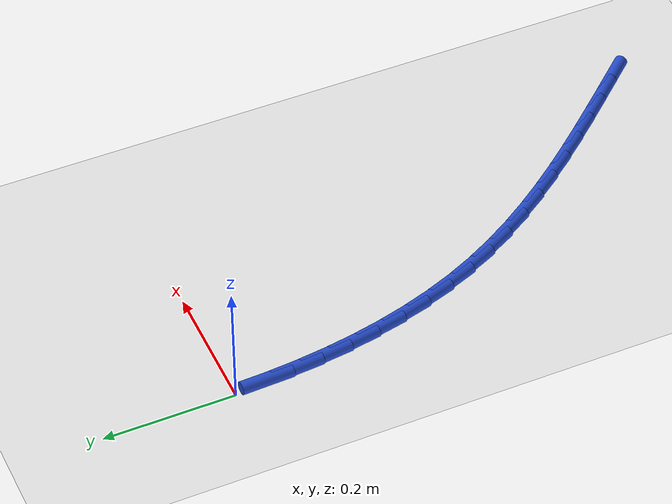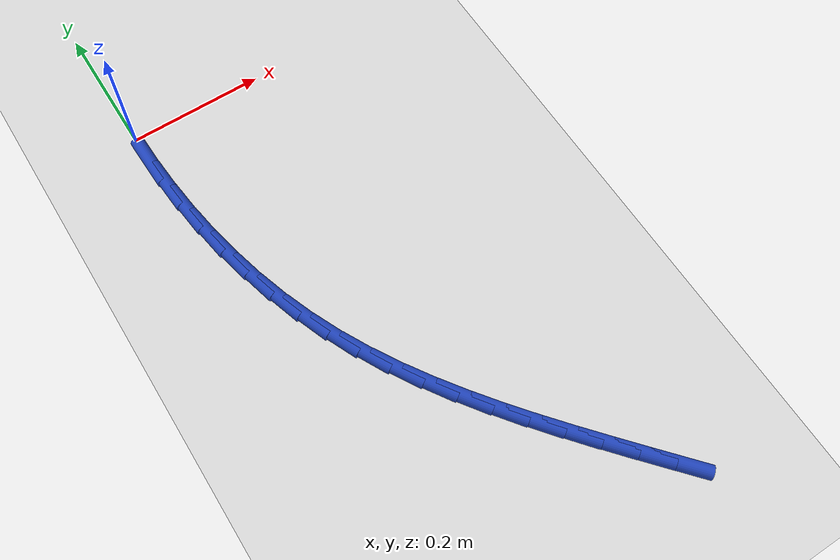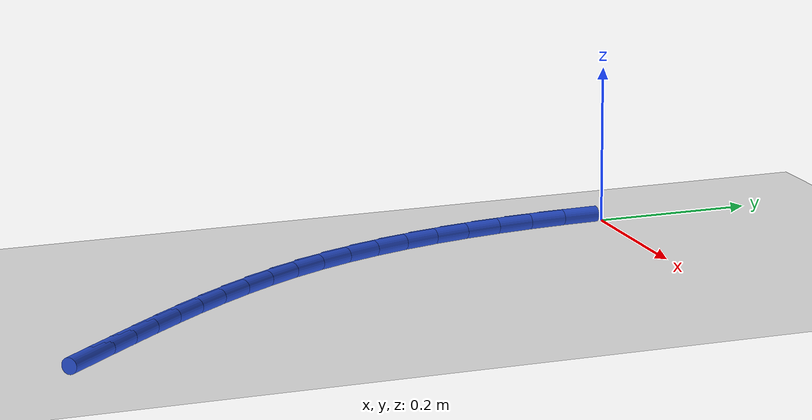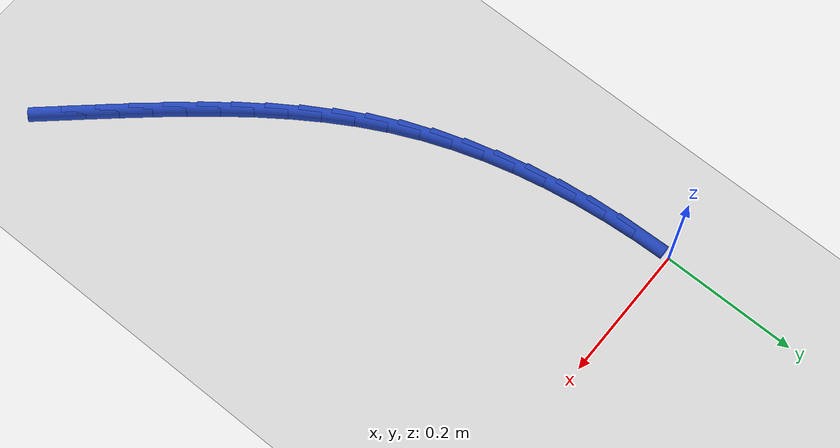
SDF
<sdf version="1.6">
 <world name="default">
  <model name="ground_plane">
   <static>1</static>
   <link name="link">
    <collision name="collision">
     <geometry><plane><normal>0 0 1</normal><size>100 100</size></plane></geometry>
     <surface><friction><ode><mu>100</mu><mu2>50</mu2></ode></friction></surface>
    </collision>
    <visual name="visual">
     <cast_shadows>0</cast_shadows>
     <geometry><plane><normal>0 0 1</normal><size>100 100</size></plane></geometry>
     <material>
      <script><uri>file://media/materials/scripts/gazebo.material</uri><name>Gazebo/WhiteGlow</name></script>
     </material>
    </visual>
   </link>
  </model>
  <model name="line">
   <link name="link_131">
    <pose>0.366102742569241 -0.7827191253254164 0.01 0 1.57 -0.8429794388517418</pose>
    <collision name="collision">
     <geometry><cylinder><radius>0.01</radius><length>0.08</length></cylinder></geometry>
    </collision>
    <visual name="visual">
     <material>
      <script><name>Gazebo/Blue</name><uri>file://media/materials/scripts/gazebo.material</uri></script>
     </material>
     <geometry><cylinder><radius>0.01</radius><length>0.08</length></cylinder></geometry>
    </visual>
   </link>
   <link name="link_132">
    <pose>0.33542247842937917 -0.7482853632168999 0.01 0 1.57 -0.8480424731936691</pose>
    <collision name="collision">
     <geometry><cylinder><radius>0.01</radius><length>0.08</length></cylinder></geometry>
    </collision>
    <visual name="visual">
     <material>
      <script><name>Gazebo/Blue</name><uri>file://media/materials/scripts/gazebo.material</uri></script>
     </material>
     <geometry><cylinder><radius>0.01</radius><length>0.08</length></cylinder></geometry>
    </visual>
   </link>
   <link name="link_133">
    <pose>0.30466275017295413 -0.7134084881879716 0.01 0 1.57 -0.8566312202091887</pose>
    <collision name="collision">
     <geometry><cylinder><radius>0.01</radius><length>0.08</length></cylinder></geometry>
    </collision>
    <visual name="visual">
     <material>
      <script><name>Gazebo/Blue</name><uri>file://media/materials/scripts/gazebo.material</uri></script>
     </material>
     <geometry><cylinder><radius>0.01</radius><length>0.08</length></cylinder></geometry>
    </visual>
   </link>
   <link name="link_134">
    <pose>0.27400243652153217 -0.6780365214501081 0.01 0 1.57 -0.8711834710990899</pose>
    <collision name="collision">
     <geometry><cylinder><radius>0.01</radius><length>0.08</length></cylinder></geometry>
    </collision>
    <visual name="visual">
     <material>
      <script><name>Gazebo/Blue</name><uri>file://media/materials/scripts/gazebo.material</uri></script>
     </material>
     <geometry><cylinder><radius>0.01</radius><length>0.08</length></cylinder></geometry>
    </visual>
   </link>
   <link name="link_135">
    <pose>0.24374821481249911 -0.6420892084835649 0.01 0 1.57 -0.8917590503247574</pose>
    <collision name="collision">
     <geometry><cylinder><radius>0.01</radius><length>0.08</length></cylinder></geometry>
    </collision>
    <visual name="visual">
     <material>
      <script><name>Gazebo/Blue</name><uri>file://media/materials/scripts/gazebo.material</uri></script>
     </material>
     <geometry><cylinder><radius>0.01</radius><length>0.08</length></cylinder></geometry>
    </visual>
   </link>
   <link name="link_136">
    <pose>0.21420703956160206 -0.6054862334422605 0.01 0 1.57 -0.9184931122881407</pose>
    <collision name="collision">
     <geometry><cylinder><radius>0.01</radius><length>0.08</length></cylinder></geometry>
    </collision>
    <visual name="visual">
     <material>
      <script><name>Gazebo/Blue</name><uri>file://media/materials/scripts/gazebo.material</uri></script>
     </material>
     <geometry><cylinder><radius>0.01</radius><length>0.08</length></cylinder></geometry>
    </visual>
   </link>
   <link name="link_137">
    <pose>0.18568586528458966 -0.5681472804801139 0.01 0 1.57 -0.9515806924419745</pose>
    <collision name="collision">
     <geometry><cylinder><radius>0.01</radius><length>0.08</length></cylinder></geometry>
    </collision>
    <visual name="visual">
     <material>
      <script><name>Gazebo/Blue</name><uri>file://media/materials/scripts/gazebo.material</uri></script>
     </material>
     <geometry><cylinder><radius>0.01</radius><length>0.08</length></cylinder></geometry>
    </visual>
   </link>
   <link name="link_138">
    <pose>0.15849164649721056 -0.5299920337510451 0.01 0 1.57 -0.9912485882185016</pose>
    <collision name="collision">
     <geometry><cylinder><radius>0.01</radius><length>0.08</length></cylinder></geometry>
    </collision>
    <visual name="visual">
     <material>
      <script><name>Gazebo/Blue</name><uri>file://media/materials/scripts/gazebo.material</uri></script>
     </material>
     <geometry><cylinder><radius>0.01</radius><length>0.08</length></cylinder></geometry>
    </visual>
   </link>
   <link name="link_139">
    <pose>0.13293133771521212 -0.4909401774089723 0.01 0 1.57 -1.0377165753269992</pose>
    <collision name="collision">
     <geometry><cylinder><radius>0.01</radius><length>0.08</length></cylinder></geometry>
    </collision>
    <visual name="visual">
     <material>
      <script><name>Gazebo/Blue</name><uri>file://media/materials/scripts/gazebo.material</uri></script>
     </material>
     <geometry><cylinder><radius>0.01</radius><length>0.08</length></cylinder></geometry>
    </visual>
   </link>
   <link name="link_140">
    <pose>0.10931189345434324 -0.4509113956078153 0.01 0 1.57 -1.0911449791452317</pose>
    <collision name="collision">
     <geometry><cylinder><radius>0.01</radius><length>0.08</length></cylinder></geometry>
    </collision>
    <visual name="visual">
     <material>
      <script><name>Gazebo/Blue</name><uri>file://media/materials/scripts/gazebo.material</uri></script>
     </material>
     <geometry><cylinder><radius>0.01</radius><length>0.08</length></cylinder></geometry>
    </visual>
   </link>
   <link name="link_141">
    <pose>0.0879402682303514 -0.40982537250149204 0.01 0 1.57 -1.1503179667245942</pose>
    <collision name="collision">
     <geometry><cylinder><radius>0.01</radius><length>0.08</length></cylinder></geometry>
    </collision>
    <visual name="visual">
     <material>
      <script><name>Gazebo/Blue</name><uri>file://media/materials/scripts/gazebo.material</uri></script>
     </material>
     <geometry><cylinder><radius>0.01</radius><length>0.08</length></cylinder></geometry>
    </visual>
   </link>
   <link name="link_142">
    <pose>0.06907051487336853 -0.3676249830524414 0.01 0 1.57 -1.2088408886434057</pose>
    <collision name="collision">
     <geometry><cylinder><radius>0.01</radius><length>0.08</length></cylinder></geometry>
    </collision>
    <visual name="visual">
     <material>
      <script><name>Gazebo/Blue</name><uri>file://media/materials/scripts/gazebo.material</uri></script>
     </material>
     <geometry><cylinder><radius>0.01</radius><length>0.08</length></cylinder></geometry>
    </visual>
   </link>
   <link name="link_143">
    <pose>0.05269221511523673 -0.32436903990122756 0.01 0 1.57 -1.264575523895898</pose>
    <collision name="collision">
     <geometry><cylinder><radius>0.01</radius><length>0.08</length></cylinder></geometry>
    </collision>
    <visual name="visual">
     <material>
      <script><name>Gazebo/Blue</name><uri>file://media/materials/scripts/gazebo.material</uri></script>
     </material>
     <geometry><cylinder><radius>0.01</radius><length>0.08</length></cylinder></geometry>
    </visual>
   </link>
   <link name="link_144">
    <pose>0.038712472538065215 -0.28015251209732733 0.01 0 1.57 -1.3174101427932785</pose>
    <collision name="collision">
     <geometry><cylinder><radius>0.01</radius><length>0.08</length></cylinder></geometry>
    </collision>
    <visual name="visual">
     <material>
      <script><name>Gazebo/Blue</name><uri>file://media/materials/scripts/gazebo.material</uri></script>
     </material>
     <geometry><cylinder><radius>0.01</radius><length>0.08</length></cylinder></geometry>
    </visual>
   </link>
   <link name="link_145">
    <pose>0.027038363608368574 -0.23507038057703628 0.01 0 1.57 -1.3673091521047978</pose>
    <collision name="collision">
     <geometry><cylinder><radius>0.01</radius><length>0.08</length></cylinder></geometry>
    </collision>
    <visual name="visual">
     <material>
      <script><name>Gazebo/Blue</name><uri>file://media/materials/scripts/gazebo.material</uri></script>
     </material>
     <geometry><cylinder><radius>0.01</radius><length>0.08</length></cylinder></geometry>
    </visual>
   </link>
   <link name="link_146">
    <pose>0.01757696479266058 -0.18921762627664718 0.01 0 1.57 -1.4142988088045314</pose>
    <collision name="collision">
     <geometry><cylinder><radius>0.01</radius><length>0.08</length></cylinder></geometry>
    </collision>
    <visual name="visual">
     <material>
      <script><name>Gazebo/Blue</name><uri>file://media/materials/scripts/gazebo.material</uri></script>
     </material>
     <geometry><cylinder><radius>0.01</radius><length>0.08</length></cylinder></geometry>
    </visual>
   </link>
   <link name="link_147">
    <pose>0.010235352557455585 -0.14268923013245471 0.01 0 1.57 -1.458453358458875</pose>
    <collision name="collision">
     <geometry><cylinder><radius>0.01</radius><length>0.08</length></cylinder></geometry>
    </collision>
    <visual name="visual">
     <material>
      <script><name>Gazebo/Blue</name><uri>file://media/materials/scripts/gazebo.material</uri></script>
     </material>
     <geometry><cylinder><radius>0.01</radius><length>0.08</length></cylinder></geometry>
    </visual>
   </link>
   <link name="link_148">
    <pose>0.004920603369267795 -0.09558017308075376 0.01 0 1.57 -1.4998821705964966</pose>
    <collision name="collision">
     <geometry><cylinder><radius>0.01</radius><length>0.08</length></cylinder></geometry>
    </collision>
    <visual name="visual">
     <material>
      <script><name>Gazebo/Blue</name><uri>file://media/materials/scripts/gazebo.material</uri></script>
     </material>
     <geometry><cylinder><radius>0.01</radius><length>0.08</length></cylinder></geometry>
    </visual>
   </link>
   <link name="link_149">
    <pose>0.0015397936946111891 -0.04798543605783689 0.01 0 1.57 -1.5387185622827015</pose>
    <collision name="collision">
     <geometry><cylinder><radius>0.01</radius><length>0.08</length></cylinder></geometry>
    </collision>
    <visual name="visual">
     <material>
      <script><name>Gazebo/Blue</name><uri>file://media/materials/scripts/gazebo.material</uri></script>
     </material>
     <geometry><cylinder><radius>0.01</radius><length>0.08</length></cylinder></geometry>
    </visual>
   </link>
  </model>
 </world>
</sdf>
